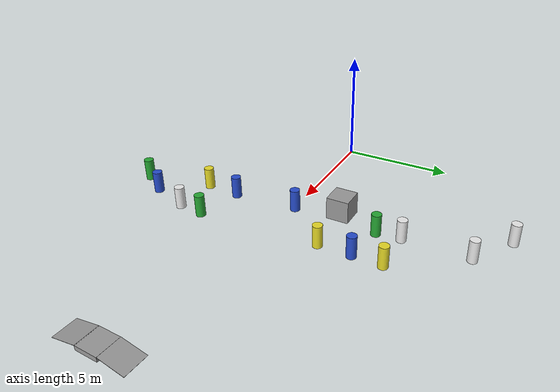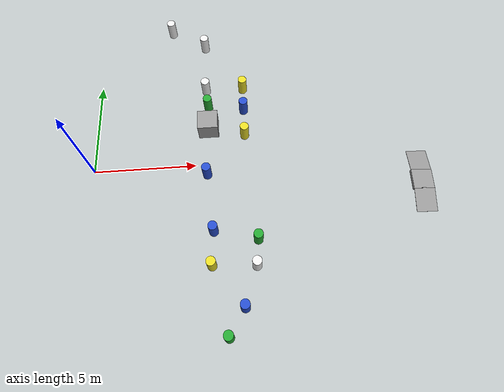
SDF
<sdf version="1.7">
 <world name="IGVC_AutoNav">
  <model name="barrel">
   <link name="link">
    <inertial>
     <mass>1</mass>
     <inertia><ixx>0.145833</ixx><ixy>0</ixy><ixz>0</ixz><iyy>0.145833</iyy><iyz>0</iyz><izz>0.125</izz></inertia>
    </inertial>
    <visual name="visual">
     <geometry><cylinder><radius>0.222916</radius><length>1.03567</length></cylinder></geometry>
     <material>
      <script><name>Gazebo/Blue</name><uri>file://media/materials/scripts/gazebo.material</uri></script>
      <shader type="pixel"/>
     </material>
    </visual>
    <collision name="collision">
     <geometry><cylinder><radius>0.222916</radius><length>1.03567</length></cylinder></geometry>
     <surface>
      <friction>
       <ode><mu>1</mu><mu2>1</mu2><fdir1>0 0 0</fdir1><slip1>0</slip1><slip2>0</slip2></ode>
       <torsional>
        <coefficient>1</coefficient>
        <patch_radius>0</patch_radius>
        <surface_radius>0</surface_radius>
        <use_patch_radius>1</use_patch_radius>
        <ode><slip>0</slip></ode>
       </torsional>
      </friction>
      <bounce><restitution_coefficient>0</restitution_coefficient><threshold>1e+06</threshold></bounce>
      <contact>
       <collide_without_contact>0</collide_without_contact>
       <collide_without_contact_bitmask>1</collide_without_contact_bitmask>
       <collide_bitmask>1</collide_bitmask>
       <ode>
        <soft_cfm>0</soft_cfm>
        <soft_erp>0.2</soft_erp>
        <kp>1e+13</kp>
        <kd>1</kd>
        <max_vel>0.01</max_vel>
        <min_depth>0</min_depth>
       </ode>
       <bullet>
        <split_impulse>1</split_impulse>
        <split_impulse_penetration_threshold>-0.01</split_impulse_penetration_threshold>
        <soft_cfm>0</soft_cfm>
        <soft_erp>0.2</soft_erp>
        <kp>1e+13</kp>
        <kd>1</kd>
       </bullet>
      </contact>
     </surface>
    </collision>
   </link>
   <static>0</static>
   <pose>7.06515 -6.91983 0 0 -0 0</pose>
  </model>
  <model name="barrel_0">
   <link name="link">
    <inertial>
     <mass>1</mass>
     <inertia><ixx>0.145833</ixx><ixy>0</ixy><ixz>0</ixz><iyy>0.145833</iyy><iyz>0</iyz><izz>0.125</izz></inertia>
    </inertial>
    <visual name="visual">
     <geometry><cylinder><radius>0.222916</radius><length>1.03567</length></cylinder></geometry>
     <material>
      <script><name>Gazebo/Green</name><uri>file://media/materials/scripts/gazebo.material</uri></script>
      <shader type="pixel"/>
     </material>
    </visual>
    <collision name="collision">
     <geometry><cylinder><radius>0.222916</radius><length>1.03567</length></cylinder></geometry>
     <surface>
      <friction>
       <ode><mu>1</mu><mu2>1</mu2><fdir1>0 0 0</fdir1><slip1>0</slip1><slip2>0</slip2></ode>
       <torsional>
        <coefficient>1</coefficient>
        <patch_radius>0</patch_radius>
        <surface_radius>0</surface_radius>
        <use_patch_radius>1</use_patch_radius>
        <ode><slip>0</slip></ode>
       </torsional>
      </friction>
      <bounce><restitution_coefficient>0</restitution_coefficient><threshold>1e+06</threshold></bounce>
      <contact>
       <collide_without_contact>0</collide_without_contact>
       <collide_without_contact_bitmask>1</collide_without_contact_bitmask>
       <collide_bitmask>1</collide_bitmask>
       <ode>
        <soft_cfm>0</soft_cfm>
        <soft_erp>0.2</soft_erp>
        <kp>1e+13</kp>
        <kd>1</kd>
        <max_vel>0.01</max_vel>
        <min_depth>0</min_depth>
       </ode>
       <bullet>
        <split_impulse>1</split_impulse>
        <split_impulse_penetration_threshold>-0.01</split_impulse_penetration_threshold>
        <soft_cfm>0</soft_cfm>
        <soft_erp>0.2</soft_erp>
        <kp>1e+13</kp>
        <kd>1</kd>
       </bullet>
      </contact>
     </surface>
    </collision>
   </link>
   <static>0</static>
   <pose>6.29971 -8.12332 0 0 -0 0</pose>
  </model>
  <model name="barrel_24">
   <link name="link">
    <inertial>
     <mass>1</mass>
     <inertia><ixx>0.145833</ixx><ixy>0</ixy><ixz>0</ixz><iyy>0.145833</iyy><iyz>0</iyz><izz>0.125</izz></inertia>
    </inertial>
    <visual name="visual">
     <geometry><cylinder><radius>0.222916</radius><length>1.03567</length></cylinder></geometry>
     <material>
      <script><name>Gazebo/White</name><uri>file://media/materials/scripts/gazebo.material</uri></script>
      <shader type="pixel"/>
     </material>
    </visual>
    <collision name="collision">
     <geometry><cylinder><radius>0.222916</radius><length>1.03567</length></cylinder></geometry>
     <surface>
      <friction>
       <ode><mu>1</mu><mu2>1</mu2><fdir1>0 0 0</fdir1><slip1>0</slip1><slip2>0</slip2></ode>
       <torsional>
        <coefficient>1</coefficient>
        <patch_radius>0</patch_radius>
        <surface_radius>0</surface_radius>
        <use_patch_radius>1</use_patch_radius>
        <ode><slip>0</slip></ode>
       </torsional>
      </friction>
      <bounce><restitution_coefficient>0</restitution_coefficient><threshold>1e+06</threshold></bounce>
      <contact>
       <collide_without_contact>0</collide_without_contact>
       <collide_without_contact_bitmask>1</collide_without_contact_bitmask>
       <collide_bitmask>1</collide_bitmask>
       <ode>
        <soft_cfm>0</soft_cfm>
        <soft_erp>0.2</soft_erp>
        <kp>1e+13</kp>
        <kd>1</kd>
        <max_vel>0.01</max_vel>
        <min_depth>0</min_depth>
       </ode>
       <bullet>
        <split_impulse>1</split_impulse>
        <split_impulse_penetration_threshold>-0.01</split_impulse_penetration_threshold>
        <soft_cfm>0</soft_cfm>
        <soft_erp>0.2</soft_erp>
        <kp>1e+13</kp>
        <kd>1</kd>
       </bullet>
      </contact>
     </surface>
    </collision>
   </link>
   <static>0</static>
   <pose>5.56898 7.78097 0 0 -0 0</pose>
  </model>
  <model name="barrel_28">
   <link name="link">
    <inertial>
     <mass>1</mass>
     <inertia><ixx>0.145833</ixx><ixy>0</ixy><ixz>0</ixz><iyy>0.145833</iyy><iyz>0</iyz><izz>0.125</izz></inertia>
    </inertial>
    <visual name="visual">
     <geometry><cylinder><radius>0.222916</radius><length>1.03567</length></cylinder></geometry>
     <material>
      <script><name>Gazebo/White</name><uri>file://media/materials/scripts/gazebo.material</uri></script>
      <shader type="pixel"/>
     </material>
    </visual>
    <collision name="collision">
     <geometry><cylinder><radius>0.222916</radius><length>1.03567</length></cylinder></geometry>
     <surface>
      <friction>
       <ode><mu>1</mu><mu2>1</mu2><fdir1>0 0 0</fdir1><slip1>0</slip1><slip2>0</slip2></ode>
       <torsional>
        <coefficient>1</coefficient>
        <patch_radius>0</patch_radius>
        <surface_radius>0</surface_radius>
        <use_patch_radius>1</use_patch_radius>
        <ode><slip>0</slip></ode>
       </torsional>
      </friction>
      <bounce><restitution_coefficient>0</restitution_coefficient><threshold>1e+06</threshold></bounce>
      <contact>
       <collide_without_contact>0</collide_without_contact>
       <collide_without_contact_bitmask>1</collide_without_contact_bitmask>
       <collide_bitmask>1</collide_bitmask>
       <ode>
        <soft_cfm>0</soft_cfm>
        <soft_erp>0.2</soft_erp>
        <kp>1e+13</kp>
        <kd>1</kd>
        <max_vel>0.01</max_vel>
        <min_depth>0</min_depth>
       </ode>
       <bullet>
        <split_impulse>1</split_impulse>
        <split_impulse_penetration_threshold>-0.01</split_impulse_penetration_threshold>
        <soft_cfm>0</soft_cfm>
        <soft_erp>0.2</soft_erp>
        <kp>1e+13</kp>
        <kd>1</kd>
       </bullet>
      </contact>
     </surface>
    </collision>
   </link>
   <static>0</static>
   <pose>3.68913 9.02449 0 0 -0 0</pose>
  </model>
  <model name="barrel_30">
   <link name="link">
    <inertial>
     <mass>1</mass>
     <inertia><ixx>0.145833</ixx><ixy>0</ixy><ixz>0</ixz><iyy>0.145833</iyy><iyz>0</iyz><izz>0.125</izz></inertia>
    </inertial>
    <visual name="visual">
     <geometry><cylinder><radius>0.222916</radius><length>1.03567</length></cylinder></geometry>
     <material>
      <script><name>Gazebo/Green</name><uri>file://media/materials/scripts/gazebo.material</uri></script>
      <shader type="pixel"/>
     </material>
    </visual>
    <collision name="collision">
     <geometry><cylinder><radius>0.222916</radius><length>1.03567</length></cylinder></geometry>
     <surface>
      <friction>
       <ode><mu>1</mu><mu2>1</mu2><fdir1>0 0 0</fdir1><slip1>0</slip1><slip2>0</slip2></ode>
       <torsional>
        <coefficient>1</coefficient>
        <patch_radius>0</patch_radius>
        <surface_radius>0</surface_radius>
        <use_patch_radius>1</use_patch_radius>
        <ode><slip>0</slip></ode>
       </torsional>
      </friction>
      <bounce><restitution_coefficient>0</restitution_coefficient><threshold>1e+06</threshold></bounce>
      <contact>
       <collide_without_contact>0</collide_without_contact>
       <collide_without_contact_bitmask>1</collide_without_contact_bitmask>
       <collide_bitmask>1</collide_bitmask>
       <ode>
        <soft_cfm>0</soft_cfm>
        <soft_erp>0.2</soft_erp>
        <kp>1e+13</kp>
        <kd>1</kd>
        <max_vel>0.01</max_vel>
        <min_depth>0</min_depth>
       </ode>
       <bullet>
        <split_impulse>1</split_impulse>
        <split_impulse_penetration_threshold>-0.01</split_impulse_penetration_threshold>
        <soft_cfm>0</soft_cfm>
        <soft_erp>0.2</soft_erp>
        <kp>1e+13</kp>
        <kd>1</kd>
       </bullet>
      </contact>
     </surface>
    </collision>
   </link>
   <static>0</static>
   <pose>7.85271 -3.86064 0 0 -0 0</pose>
  </model>
  <model name="barrel_31">
   <link name="link">
    <inertial>
     <mass>1</mass>
     <inertia><ixx>0.145833</ixx><ixy>0</ixy><ixz>0</ixz><iyy>0.145833</iyy><iyz>0</iyz><izz>0.125</izz></inertia>
    </inertial>
    <visual name="visual">
     <geometry><cylinder><radius>0.222916</radius><length>1.03567</length></cylinder></geometry>
     <material>
      <script><name>Gazebo/Green</name><uri>file://media/materials/scripts/gazebo.material</uri></script>
      <shader type="pixel"/>
     </material>
    </visual>
    <collision name="collision">
     <geometry><cylinder><radius>0.222916</radius><length>1.03567</length></cylinder></geometry>
     <surface>
      <friction>
       <ode><mu>1</mu><mu2>1</mu2><fdir1>0 0 0</fdir1><slip1>0</slip1><slip2>0</slip2></ode>
       <torsional>
        <coefficient>1</coefficient>
        <patch_radius>0</patch_radius>
        <surface_radius>0</surface_radius>
        <use_patch_radius>1</use_patch_radius>
        <ode><slip>0</slip></ode>
       </torsional>
      </friction>
      <bounce><restitution_coefficient>0</restitution_coefficient><threshold>1e+06</threshold></bounce>
      <contact>
       <collide_without_contact>0</collide_without_contact>
       <collide_without_contact_bitmask>1</collide_without_contact_bitmask>
       <collide_bitmask>1</collide_bitmask>
       <ode>
        <soft_cfm>0</soft_cfm>
        <soft_erp>0.2</soft_erp>
        <kp>1e+13</kp>
        <kd>1</kd>
        <max_vel>0.01</max_vel>
        <min_depth>0</min_depth>
       </ode>
       <bullet>
        <split_impulse>1</split_impulse>
        <split_impulse_penetration_threshold>-0.01</split_impulse_penetration_threshold>
        <soft_cfm>0</soft_cfm>
        <soft_erp>0.2</soft_erp>
        <kp>1e+13</kp>
        <kd>1</kd>
       </bullet>
      </contact>
     </surface>
    </collision>
   </link>
   <static>0</static>
   <pose>5.66048 3.67983 0 0 -0 0</pose>
  </model>
  <model name="barrel_32">
   <link name="link">
    <inertial>
     <mass>1</mass>
     <inertia><ixx>0.145833</ixx><ixy>0</ixy><ixz>0</ixz><iyy>0.145833</iyy><iyz>0</iyz><izz>0.125</izz></inertia>
    </inertial>
    <visual name="visual">
     <geometry><cylinder><radius>0.222916</radius><length>1.03567</length></cylinder></geometry>
     <material>
      <script><name>Gazebo/Yellow</name><uri>file://media/materials/scripts/gazebo.material</uri></script>
      <shader type="pixel"/>
     </material>
    </visual>
    <collision name="collision">
     <geometry><cylinder><radius>0.222916</radius><length>1.03567</length></cylinder></geometry>
     <surface>
      <friction>
       <ode><mu>1</mu><mu2>1</mu2><fdir1>0 0 0</fdir1><slip1>0</slip1><slip2>0</slip2></ode>
       <torsional>
        <coefficient>1</coefficient>
        <patch_radius>0</patch_radius>
        <surface_radius>0</surface_radius>
        <use_patch_radius>1</use_patch_radius>
        <ode><slip>0</slip></ode>
       </torsional>
      </friction>
      <bounce><restitution_coefficient>0</restitution_coefficient><threshold>1e+06</threshold></bounce>
      <contact>
       <collide_without_contact>0</collide_without_contact>
       <collide_without_contact_bitmask>1</collide_without_contact_bitmask>
       <collide_bitmask>1</collide_bitmask>
       <ode>
        <soft_cfm>0</soft_cfm>
        <soft_erp>0.2</soft_erp>
        <kp>1e+13</kp>
        <kd>1</kd>
        <max_vel>0.01</max_vel>
        <min_depth>0</min_depth>
       </ode>
       <bullet>
        <split_impulse>1</split_impulse>
        <split_impulse_penetration_threshold>-0.01</split_impulse_penetration_threshold>
        <soft_cfm>0</soft_cfm>
        <soft_erp>0.2</soft_erp>
        <kp>1e+13</kp>
        <kd>1</kd>
       </bullet>
      </contact>
     </surface>
    </collision>
   </link>
   <static>0</static>
   <pose>7.56369 4.76396 0 0 -0 0</pose>
  </model>
  <model name="barrel_33">
   <link name="link">
    <inertial>
     <mass>1</mass>
     <inertia><ixx>0.145833</ixx><ixy>0</ixy><ixz>0</ixz><iyy>0.145833</iyy><iyz>0</iyz><izz>0.125</izz></inertia>
    </inertial>
    <visual name="visual">
     <geometry><cylinder><radius>0.222916</radius><length>1.03567</length></cylinder></geometry>
     <material>
      <script><name>Gazebo/White</name><uri>file://media/materials/scripts/gazebo.material</uri></script>
      <shader type="pixel"/>
     </material>
    </visual>
    <collision name="collision">
     <geometry><cylinder><radius>0.222916</radius><length>1.03567</length></cylinder></geometry>
     <surface>
      <friction>
       <ode><mu>1</mu><mu2>1</mu2><fdir1>0 0 0</fdir1><slip1>0</slip1><slip2>0</slip2></ode>
       <torsional>
        <coefficient>1</coefficient>
        <patch_radius>0</patch_radius>
        <surface_radius>0</surface_radius>
        <use_patch_radius>1</use_patch_radius>
        <ode><slip>0</slip></ode>
       </torsional>
      </friction>
      <bounce><restitution_coefficient>0</restitution_coefficient><threshold>1e+06</threshold></bounce>
      <contact>
       <collide_without_contact>0</collide_without_contact>
       <collide_without_contact_bitmask>1</collide_without_contact_bitmask>
       <collide_bitmask>1</collide_bitmask>
       <ode>
        <soft_cfm>0</soft_cfm>
        <soft_erp>0.2</soft_erp>
        <kp>1e+13</kp>
        <kd>1</kd>
        <max_vel>0.01</max_vel>
        <min_depth>0</min_depth>
       </ode>
       <bullet>
        <split_impulse>1</split_impulse>
        <split_impulse_penetration_threshold>-0.01</split_impulse_penetration_threshold>
        <soft_cfm>0</soft_cfm>
        <soft_erp>0.2</soft_erp>
        <kp>1e+13</kp>
        <kd>1</kd>
       </bullet>
      </contact>
     </surface>
    </collision>
   </link>
   <static>0</static>
   <pose>7.70825 -5.08928 0 0 -0 0</pose>
  </model>
  <model name="barrel_34">
   <link name="link">
    <inertial>
     <mass>1</mass>
     <inertia><ixx>0.145833</ixx><ixy>0</ixy><ixz>0</ixz><iyy>0.145833</iyy><iyz>0</iyz><izz>0.125</izz></inertia>
    </inertial>
    <visual name="visual">
     <geometry><cylinder><radius>0.222916</radius><length>1.03567</length></cylinder></geometry>
     <material>
      <script><name>Gazebo/Blue</name><uri>file://media/materials/scripts/gazebo.material</uri></script>
      <shader type="pixel"/>
     </material>
    </visual>
    <collision name="collision">
     <geometry><cylinder><radius>0.222916</radius><length>1.03567</length></cylinder></geometry>
     <surface>
      <friction>
       <ode><mu>1</mu><mu2>1</mu2><fdir1>0 0 0</fdir1><slip1>0</slip1><slip2>0</slip2></ode>
       <torsional>
        <coefficient>1</coefficient>
        <patch_radius>0</patch_radius>
        <surface_radius>0</surface_radius>
        <use_patch_radius>1</use_patch_radius>
        <ode><slip>0</slip></ode>
       </torsional>
      </friction>
      <bounce><restitution_coefficient>0</restitution_coefficient><threshold>1e+06</threshold></bounce>
      <contact>
       <collide_without_contact>0</collide_without_contact>
       <collide_without_contact_bitmask>1</collide_without_contact_bitmask>
       <collide_bitmask>1</collide_bitmask>
       <ode>
        <soft_cfm>0</soft_cfm>
        <soft_erp>0.2</soft_erp>
        <kp>1e+13</kp>
        <kd>1</kd>
        <max_vel>0.01</max_vel>
        <min_depth>0</min_depth>
       </ode>
       <bullet>
        <split_impulse>1</split_impulse>
        <split_impulse_penetration_threshold>-0.01</split_impulse_penetration_threshold>
        <soft_cfm>0</soft_cfm>
        <soft_erp>0.2</soft_erp>
        <kp>1e+13</kp>
        <kd>1</kd>
       </bullet>
      </contact>
     </surface>
    </collision>
   </link>
   <static>0</static>
   <pose>7.5395 3.39076 0 0 -0 0</pose>
  </model>
  <model name="barrel_35">
   <link name="link">
    <inertial>
     <mass>1</mass>
     <inertia><ixx>0.145833</ixx><ixy>0</ixy><ixz>0</ixz><iyy>0.145833</iyy><iyz>0</iyz><izz>0.125</izz></inertia>
    </inertial>
    <visual name="visual">
     <geometry><cylinder><radius>0.222916</radius><length>1.03567</length></cylinder></geometry>
     <material>
      <script><name>Gazebo/Blue</name><uri>file://media/materials/scripts/gazebo.material</uri></script>
      <shader type="pixel"/>
     </material>
    </visual>
    <collision name="collision">
     <geometry><cylinder><radius>0.222916</radius><length>1.03567</length></cylinder></geometry>
     <surface>
      <friction>
       <ode><mu>1</mu><mu2>1</mu2><fdir1>0 0 0</fdir1><slip1>0</slip1><slip2>0</slip2></ode>
       <torsional>
        <coefficient>1</coefficient>
        <patch_radius>0</patch_radius>
        <surface_radius>0</surface_radius>
        <use_patch_radius>1</use_patch_radius>
        <ode><slip>0</slip></ode>
       </torsional>
      </friction>
      <bounce><restitution_coefficient>0</restitution_coefficient><threshold>1e+06</threshold></bounce>
      <contact>
       <collide_without_contact>0</collide_without_contact>
       <collide_without_contact_bitmask>1</collide_without_contact_bitmask>
       <collide_bitmask>1</collide_bitmask>
       <ode>
        <soft_cfm>0</soft_cfm>
        <soft_erp>0.2</soft_erp>
        <kp>1e+13</kp>
        <kd>1</kd>
        <max_vel>0.01</max_vel>
        <min_depth>0</min_depth>
       </ode>
       <bullet>
        <split_impulse>1</split_impulse>
        <split_impulse_penetration_threshold>-0.01</split_impulse_penetration_threshold>
        <soft_cfm>0</soft_cfm>
        <soft_erp>0.2</soft_erp>
        <kp>1e+13</kp>
        <kd>1</kd>
       </bullet>
      </contact>
     </surface>
    </collision>
   </link>
   <static>0</static>
   <pose>5.51591 -0.319241 0 0 -0 0</pose>
  </model>
  <model name="barrel_36">
   <link name="link">
    <inertial>
     <mass>1</mass>
     <inertia><ixx>0.145833</ixx><ixy>0</ixy><ixz>0</ixz><iyy>0.145833</iyy><iyz>0</iyz><izz>0.125</izz></inertia>
    </inertial>
    <visual name="visual">
     <geometry><cylinder><radius>0.222916</radius><length>1.03567</length></cylinder></geometry>
     <material>
      <script><name>Gazebo/Blue</name><uri>file://media/materials/scripts/gazebo.material</uri></script>
      <shader type="pixel"/>
     </material>
    </visual>
    <collision name="collision">
     <geometry><cylinder><radius>0.222916</radius><length>1.03567</length></cylinder></geometry>
     <surface>
      <friction>
       <ode><mu>1</mu><mu2>1</mu2><fdir1>0 0 0</fdir1><slip1>0</slip1><slip2>0</slip2></ode>
       <torsional>
        <coefficient>1</coefficient>
        <patch_radius>0</patch_radius>
        <surface_radius>0</surface_radius>
        <use_patch_radius>1</use_patch_radius>
        <ode><slip>0</slip></ode>
       </torsional>
      </friction>
      <bounce><restitution_coefficient>0</restitution_coefficient><threshold>1e+06</threshold></bounce>
      <contact>
       <collide_without_contact>0</collide_without_contact>
       <collide_without_contact_bitmask>1</collide_without_contact_bitmask>
       <collide_bitmask>1</collide_bitmask>
       <ode>
        <soft_cfm>0</soft_cfm>
        <soft_erp>0.2</soft_erp>
        <kp>1e+13</kp>
        <kd>1</kd>
        <max_vel>0.01</max_vel>
        <min_depth>0</min_depth>
       </ode>
       <bullet>
        <split_impulse>1</split_impulse>
        <split_impulse_penetration_threshold>-0.01</split_impulse_penetration_threshold>
        <soft_cfm>0</soft_cfm>
        <soft_erp>0.2</soft_erp>
        <kp>1e+13</kp>
        <kd>1</kd>
       </bullet>
      </contact>
     </surface>
    </collision>
   </link>
   <static>0</static>
   <pose>5.75682 -3.33063 0 0 -0 0</pose>
  </model>
  <model name="barrel_37">
   <link name="link">
    <inertial>
     <mass>1</mass>
     <inertia><ixx>0.145833</ixx><ixy>0</ixy><ixz>0</ixz><iyy>0.145833</iyy><iyz>0</iyz><izz>0.125</izz></inertia>
    </inertial>
    <visual name="visual">
     <geometry><cylinder><radius>0.222916</radius><length>1.03567</length></cylinder></geometry>
     <material>
      <script><name>Gazebo/Yellow</name><uri>file://media/materials/scripts/gazebo.material</uri></script>
      <shader type="pixel"/>
     </material>
    </visual>
    <collision name="collision">
     <geometry><cylinder><radius>0.222916</radius><length>1.03567</length></cylinder></geometry>
     <surface>
      <friction>
       <ode><mu>1</mu><mu2>1</mu2><fdir1>0 0 0</fdir1><slip1>0</slip1><slip2>0</slip2></ode>
       <torsional>
        <coefficient>1</coefficient>
        <patch_radius>0</patch_radius>
        <surface_radius>0</surface_radius>
        <use_patch_radius>1</use_patch_radius>
        <ode><slip>0</slip></ode>
       </torsional>
      </friction>
      <bounce><restitution_coefficient>0</restitution_coefficient><threshold>1e+06</threshold></bounce>
      <contact>
       <collide_without_contact>0</collide_without_contact>
       <collide_without_contact_bitmask>1</collide_without_contact_bitmask>
       <collide_bitmask>1</collide_bitmask>
       <ode>
        <soft_cfm>0</soft_cfm>
        <soft_erp>0.2</soft_erp>
        <kp>1e+13</kp>
        <kd>1</kd>
        <max_vel>0.01</max_vel>
        <min_depth>0</min_depth>
       </ode>
       <bullet>
        <split_impulse>1</split_impulse>
        <split_impulse_penetration_threshold>-0.01</split_impulse_penetration_threshold>
        <soft_cfm>0</soft_cfm>
        <soft_erp>0.2</soft_erp>
        <kp>1e+13</kp>
        <kd>1</kd>
       </bullet>
      </contact>
     </surface>
    </collision>
   </link>
   <static>0</static>
   <pose>5.63629 -4.9688 0 0 -0 0</pose>
  </model>
  <model name="barrel_38">
   <link name="link">
    <inertial>
     <mass>1</mass>
     <inertia><ixx>0.145833</ixx><ixy>0</ixy><ixz>0</ixz><iyy>0.145833</iyy><iyz>0</iyz><izz>0.125</izz></inertia>
    </inertial>
    <visual name="visual">
     <geometry><cylinder><radius>0.222916</radius><length>1.03567</length></cylinder></geometry>
     <material>
      <script><name>Gazebo/White</name><uri>file://media/materials/scripts/gazebo.material</uri></script>
      <shader type="pixel"/>
     </material>
    </visual>
    <collision name="collision">
     <geometry><cylinder><radius>0.222916</radius><length>1.03567</length></cylinder></geometry>
     <surface>
      <friction>
       <ode><mu>1</mu><mu2>1</mu2><fdir1>0 0 0</fdir1><slip1>0</slip1><slip2>0</slip2></ode>
       <torsional>
        <coefficient>1</coefficient>
        <patch_radius>0</patch_radius>
        <surface_radius>0</surface_radius>
        <use_patch_radius>1</use_patch_radius>
        <ode><slip>0</slip></ode>
       </torsional>
      </friction>
      <bounce><restitution_coefficient>0</restitution_coefficient><threshold>1e+06</threshold></bounce>
      <contact>
       <collide_without_contact>0</collide_without_contact>
       <collide_without_contact_bitmask>1</collide_without_contact_bitmask>
       <collide_bitmask>1</collide_bitmask>
       <ode>
        <soft_cfm>0</soft_cfm>
        <soft_erp>0.2</soft_erp>
        <kp>1e+13</kp>
        <kd>1</kd>
        <max_vel>0.01</max_vel>
        <min_depth>0</min_depth>
       </ode>
       <bullet>
        <split_impulse>1</split_impulse>
        <split_impulse_penetration_threshold>-0.01</split_impulse_penetration_threshold>
        <soft_cfm>0</soft_cfm>
        <soft_erp>0.2</soft_erp>
        <kp>1e+13</kp>
        <kd>1</kd>
       </bullet>
      </contact>
     </surface>
    </collision>
   </link>
   <static>0</static>
   <pose>5.56419 4.78802 0 0 -0 0</pose>
  </model>
  <model name="barrel_39">
   <link name="link">
    <inertial>
     <mass>1</mass>
     <inertia><ixx>0.145833</ixx><ixy>0</ixy><ixz>0</ixz><iyy>0.145833</iyy><iyz>0</iyz><izz>0.125</izz></inertia>
    </inertial>
    <visual name="visual">
     <geometry><cylinder><radius>0.222916</radius><length>1.03567</length></cylinder></geometry>
     <material>
      <script><name>Gazebo/Yellow</name><uri>file://media/materials/scripts/gazebo.material</uri></script>
      <shader type="pixel"/>
     </material>
    </visual>
    <collision name="collision">
     <geometry><cylinder><radius>0.222916</radius><length>1.03567</length></cylinder></geometry>
     <surface>
      <friction>
       <ode><mu>1</mu><mu2>1</mu2><fdir1>0 0 0</fdir1><slip1>0</slip1><slip2>0</slip2></ode>
       <torsional>
        <coefficient>1</coefficient>
        <patch_radius>0</patch_radius>
        <surface_radius>0</surface_radius>
        <use_patch_radius>1</use_patch_radius>
        <ode><slip>0</slip></ode>
       </torsional>
      </friction>
      <bounce><restitution_coefficient>0</restitution_coefficient><threshold>1e+06</threshold></bounce>
      <contact>
       <collide_without_contact>0</collide_without_contact>
       <collide_without_contact_bitmask>1</collide_without_contact_bitmask>
       <collide_bitmask>1</collide_bitmask>
       <ode>
        <soft_cfm>0</soft_cfm>
        <soft_erp>0.2</soft_erp>
        <kp>1e+13</kp>
        <kd>1</kd>
        <max_vel>0.01</max_vel>
        <min_depth>0</min_depth>
       </ode>
       <bullet>
        <split_impulse>1</split_impulse>
        <split_impulse_penetration_threshold>-0.01</split_impulse_penetration_threshold>
        <soft_cfm>0</soft_cfm>
        <soft_erp>0.2</soft_erp>
        <kp>1e+13</kp>
        <kd>1</kd>
       </bullet>
      </contact>
     </surface>
    </collision>
   </link>
   <static>0</static>
   <pose>7.51546 1.84898 0 0 -0 0</pose>
  </model>
  <model name="unit_box">
   <pose>5.68461 2.08984 0.5 0 -0 0</pose>
   <link name="link">
    <inertial>
     <mass>1</mass>
     <inertia>
      <ixx>0.166667</ixx>
      <ixy>0</ixy>
      <ixz>0</ixz>
      <iyy>0.166667</iyy>
      <iyz>0</iyz>
      <izz>0.166667</izz>
     </inertia>
    </inertial>
    <collision name="collision"><geometry><box><size>0.999992 1 1</size></box></geometry></collision>
    <visual name="visual">
     <geometry><box><size>0.999992 1 1</size></box></geometry>
     <material>
      <script><name>Gazebo/Grey</name><uri>file://media/materials/scripts/gazebo.material</uri></script>
     </material>
    </visual>
   </link>
  </model>
  <model name="Construction Barrel_1_clone_0">
   <link name="link">
    <inertial>
     <pose>0 0 0.4 0 -0 0</pose>
     <mass>500</mass>
     <inertia><ixx>51.2096</ixx><iyy>51.2096</iyy><izz>25</izz><ixy>0</ixy><ixz>0</ixz><iyz>0</iyz></inertia>
    </inertial>
    <collision name="collision">
     <geometry><mesh><uri>model://construction_barrel/meshes/construction_barrel.dae</uri></mesh></geometry>
    </collision>
   </link>
   <pose>18.5631 -22.3765 -2e-06 1e-06 8e-06 0.006296</pose>
  </model>
  <model name="RAMP2">
   <link name="link_0">
    <inertial>
     <mass>100</mass>
     <inertia><ixx>8.69346</ixx><ixy>0</ixy><ixz>0</ixz><iyy>8.69346</iyy><iyz>0</iyz><izz>16.6667</izz></inertia>
    </inertial>
    <pose>0.02243 -0.004719 0.008392 0 0 -0.048312</pose>
    <visual name="visual">
     <geometry><box><size>1 1 0.207883</size></box></geometry>
     <material>
      <lighting>1</lighting>
      <script><uri>file://media/materials/scripts/gazebo.material</uri><name>Gazebo/Grey</name></script>
      <shader type="pixel"><normal_map>__default__</normal_map></shader>
      <emissive>0 0 0 1</emissive>
      <ambient>0.3 0.3 0.3 1</ambient>
      <diffuse>0.7 0.7 0.7 1</diffuse>
      <specular>0.01 0.01 0.01 1</specular>
     </material>
    </visual>
    <collision name="collision">
     <geometry><box><size>1 1 0.207883</size></box></geometry>
     <surface>
      <friction>
       <ode><mu>1</mu><mu2>1</mu2><fdir1>0 0 0</fdir1><slip1>0</slip1><slip2>0</slip2></ode>
       <torsional>
        <coefficient>1</coefficient>
        <patch_radius>0</patch_radius>
        <surface_radius>0</surface_radius>
        <use_patch_radius>1</use_patch_radius>
        <ode><slip>0</slip></ode>
       </torsional>
      </friction>
      <bounce><restitution_coefficient>0</restitution_coefficient><threshold>1e+06</threshold></bounce>
      <contact>
       <collide_without_contact>0</collide_without_contact>
       <collide_without_contact_bitmask>1</collide_without_contact_bitmask>
       <collide_bitmask>1</collide_bitmask>
       <ode>
        <soft_cfm>0</soft_cfm>
        <soft_erp>0.2</soft_erp>
        <kp>1e+13</kp>
        <kd>1</kd>
        <max_vel>0.01</max_vel>
        <min_depth>0</min_depth>
       </ode>
       <bullet>
        <split_impulse>1</split_impulse>
        <split_impulse_penetration_threshold>-0.01</split_impulse_penetration_threshold>
        <soft_cfm>0</soft_cfm>
        <soft_erp>0.2</soft_erp>
        <kp>1e+13</kp>
        <kd>1</kd>
       </bullet>
      </contact>
     </surface>
    </collision>
   </link>
   <link name="link_1">
    <inertial>
     <mass>50</mass>
     <inertia><ixx>5.7245</ixx><ixy>0</ixy><ixz>0</ixz><iyy>4.16712</iyy><iyz>0</iyz><izz>9.89071</izz></inertia>
    </inertial>
    <pose>-0.028116 -1.05205 -0.004197 0.192792 -0 -0.046123</pose>
    <visual name="visual">
     <geometry><box><size>1 1.17208 0.010432</size></box></geometry>
     <material>
      <lighting>1</lighting>
      <script><uri>file://media/materials/scripts/gazebo.material</uri><name>Gazebo/Grey</name></script>
      <shader type="pixel"><normal_map>__default__</normal_map></shader>
      <emissive>0 0 0 1</emissive>
     </material>
    </visual>
    <collision name="collision">
     <geometry><box><size>1 1.17208 0.010432</size></box></geometry>
     <surface>
      <friction>
       <ode><mu>1</mu><mu2>1</mu2><fdir1>0 0 0</fdir1><slip1>0</slip1><slip2>0</slip2></ode>
       <torsional>
        <coefficient>1</coefficient>
        <patch_radius>0</patch_radius>
        <surface_radius>0</surface_radius>
        <use_patch_radius>1</use_patch_radius>
        <ode><slip>0</slip></ode>
       </torsional>
      </friction>
      <bounce><restitution_coefficient>0</restitution_coefficient><threshold>1e+06</threshold></bounce>
      <contact>
       <collide_without_contact>0</collide_without_contact>
       <collide_without_contact_bitmask>1</collide_without_contact_bitmask>
       <collide_bitmask>1</collide_bitmask>
       <ode>
        <soft_cfm>0</soft_cfm>
        <soft_erp>0.2</soft_erp>
        <kp>1e+13</kp>
        <kd>1</kd>
        <max_vel>0.01</max_vel>
        <min_depth>0</min_depth>
       </ode>
       <bullet>
        <split_impulse>1</split_impulse>
        <split_impulse_penetration_threshold>-0.01</split_impulse_penetration_threshold>
        <soft_cfm>0</soft_cfm>
        <soft_erp>0.2</soft_erp>
        <kp>1e+13</kp>
        <kd>1</kd>
       </bullet>
      </contact>
     </surface>
    </collision>
   </link>
   <link name="link_1_clone">
    <inertial>
     <mass>50</mass>
     <inertia><ixx>5.7245</ixx><ixy>0</ixy><ixz>0</ixz><iyy>4.16712</iyy><iyz>0</iyz><izz>9.89071</izz></inertia>
    </inertial>
    <pose>0.064606 1.05405 -0.004196 -0.19048 -0 -0.046123</pose>
    <visual name="visual">
     <geometry><box><size>1 1.17208 0.010432</size></box></geometry>
     <material>
      <lighting>1</lighting>
      <script><uri>file://media/materials/scripts/gazebo.material</uri><name>Gazebo/Grey</name></script>
      <shader type="pixel"><normal_map>__default__</normal_map></shader>
      <emissive>0 0 0 1</emissive>
     </material>
    </visual>
    <collision name="collision">
     <geometry><box><size>1 1.17208 0.010432</size></box></geometry>
     <surface>
      <friction>
       <ode><mu>1</mu><mu2>1</mu2><fdir1>0 0 0</fdir1><slip1>0</slip1><slip2>0</slip2></ode>
       <torsional>
        <coefficient>1</coefficient>
        <patch_radius>0</patch_radius>
        <surface_radius>0</surface_radius>
        <use_patch_radius>1</use_patch_radius>
        <ode><slip>0</slip></ode>
       </torsional>
      </friction>
      <bounce><restitution_coefficient>0</restitution_coefficient><threshold>1e+06</threshold></bounce>
      <contact>
       <collide_without_contact>0</collide_without_contact>
       <collide_without_contact_bitmask>1</collide_without_contact_bitmask>
       <collide_bitmask>1</collide_bitmask>
       <ode>
        <soft_cfm>0</soft_cfm>
        <soft_erp>0.2</soft_erp>
        <kp>1e+13</kp>
        <kd>1</kd>
        <max_vel>0.01</max_vel>
        <min_depth>0</min_depth>
       </ode>
       <bullet>
        <split_impulse>1</split_impulse>
        <split_impulse_penetration_threshold>-0.01</split_impulse_penetration_threshold>
        <soft_cfm>0</soft_cfm>
        <soft_erp>0.2</soft_erp>
        <kp>1e+13</kp>
        <kd>1</kd>
       </bullet>
      </contact>
     </surface>
    </collision>
   </link>
   <joint name="link_0_JOINT_1" type="fixed">
    <parent>link_0</parent>
    <child>link_1</child>
    <physics>
     <ode><limit><cfm>0</cfm><erp>0.2</erp></limit><suspension><cfm>0</cfm><erp>0.2</erp></suspension></ode>
    </physics>
   </joint>
   <joint name="link_0_JOINT_2" type="fixed">
    <parent>link_0</parent>
    <child>link_1_clone</child>
    <physics>
     <ode><limit><cfm>0</cfm><erp>0.2</erp></limit><suspension><cfm>0</cfm><erp>0.2</erp></suspension></ode>
    </physics>
   </joint>
   <static>0</static>
   <pose>16.0368 -1.56468 0.095652 0 -0 0</pose>
  </model>
 </world>
</sdf>
